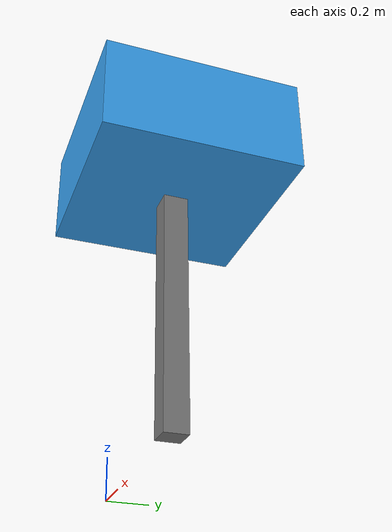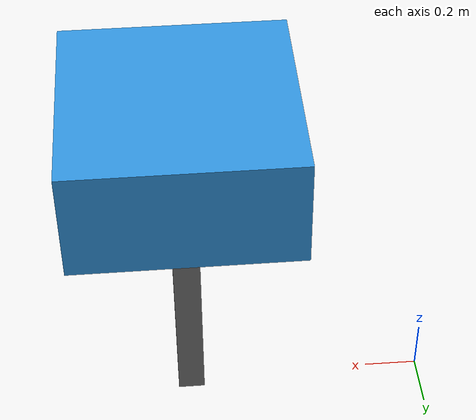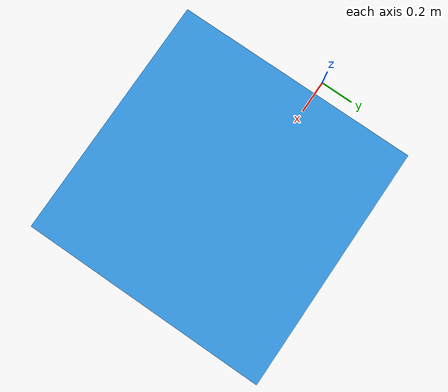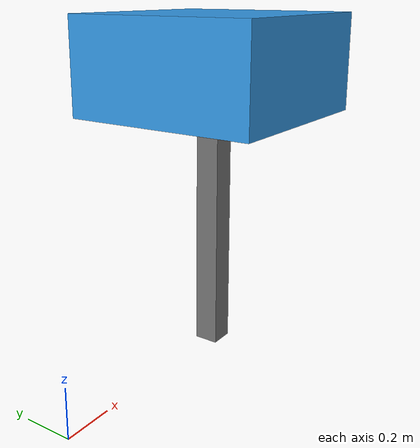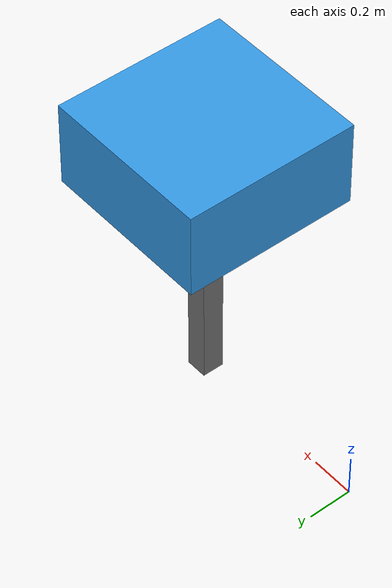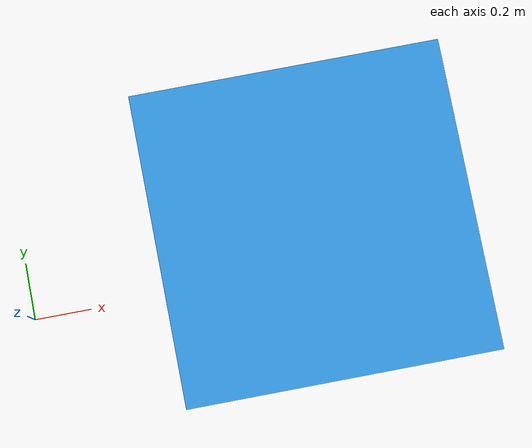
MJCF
<mujoco model="object">
  <worldbody>
    <body name="object_support" pos="0.9 0 0.5" quat="1 0 0 0">
      <geom
        name="object_support_vis"
        type="box"
        size="0.05 0.05 0.5"
        rgba="0.45 0.45 0.45 1"
        contype="0"
        conaffinity="0"/>
      <geom
        name="object_support_col"
        type="box"
        size="0.05 0.05 0.5"
        rgba="0.45 0.45 0.45 0.25"
        contype="1"
        conaffinity="1"
        condim="6"
        friction="1.2 0.03 0.01"
        solref="-800 -80"
        solimp="0.9 0.96 0.002"
        margin="0.005"
        group="5"/>
    </body>

    <body name="object" pos="0.9 0 1.2" quat="1 0 0 0">
      <freejoint name="object_freejoint"/>

      <!--
        Cube object template for palletrone-object-palm grasp tests.
        size is half-extent, so 0.03 means a 6 cm cube.
      -->
      <inertial
        pos="0 0 0"
        mass="0.15"
        diaginertia="0.00009 0.00009 0.00009"/>

      <geom
        name="object_vis"
        type="box"
        size="0.4 0.4 0.2"
        rgba="0.2 0.6 0.9 1"
        contype="0"
        conaffinity="0"/>

      <geom
        name="object_col"
        type="box"
        size="0.4 0.4 0.2"
        rgba="0.2 0.6 0.9 0.25"
        contype="1"
        conaffinity="1"
        condim="6"
        friction="1.2 0.03 0.01"
        solref="-800 -80"
        solimp="0.9 0.96 0.002"
        margin="0.005"
        group="5"/>
    </body>
  </worldbody>
</mujoco>
